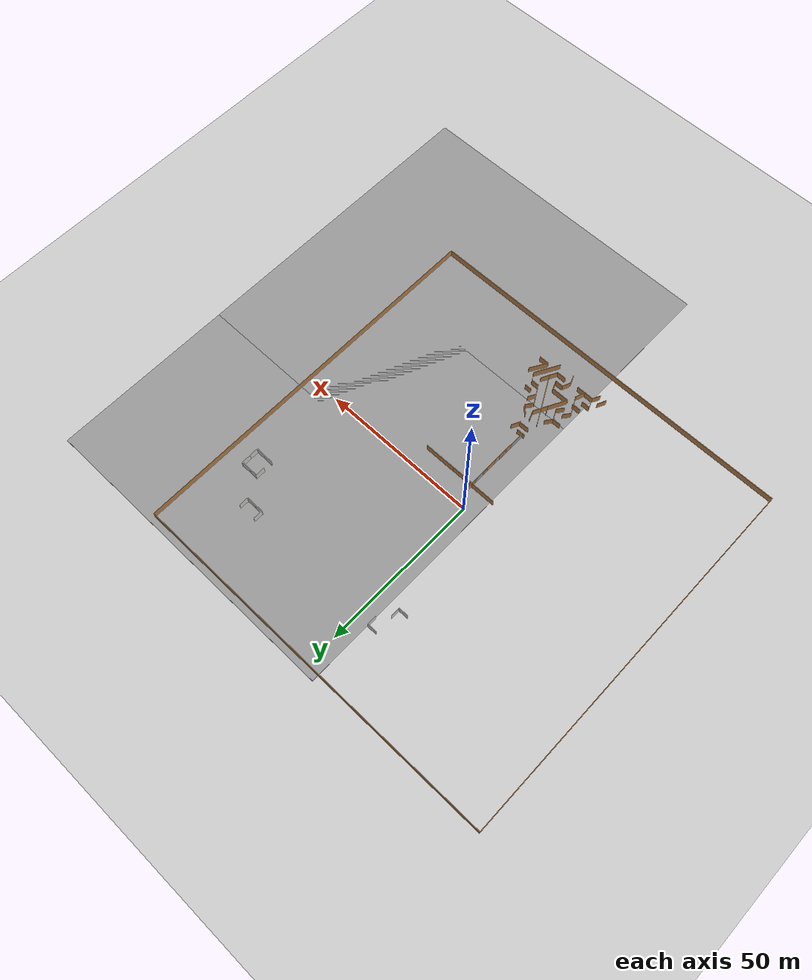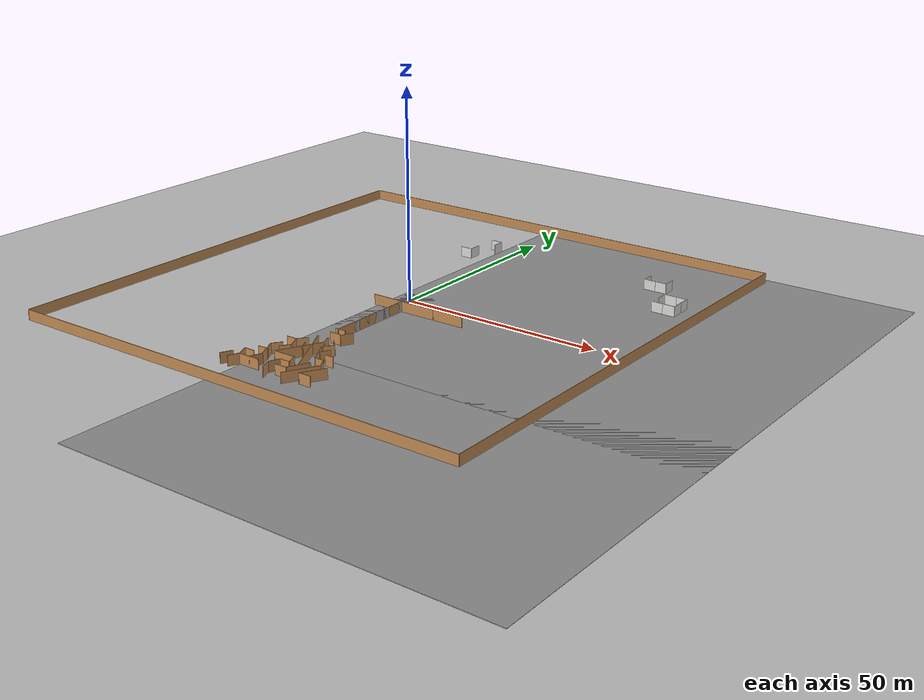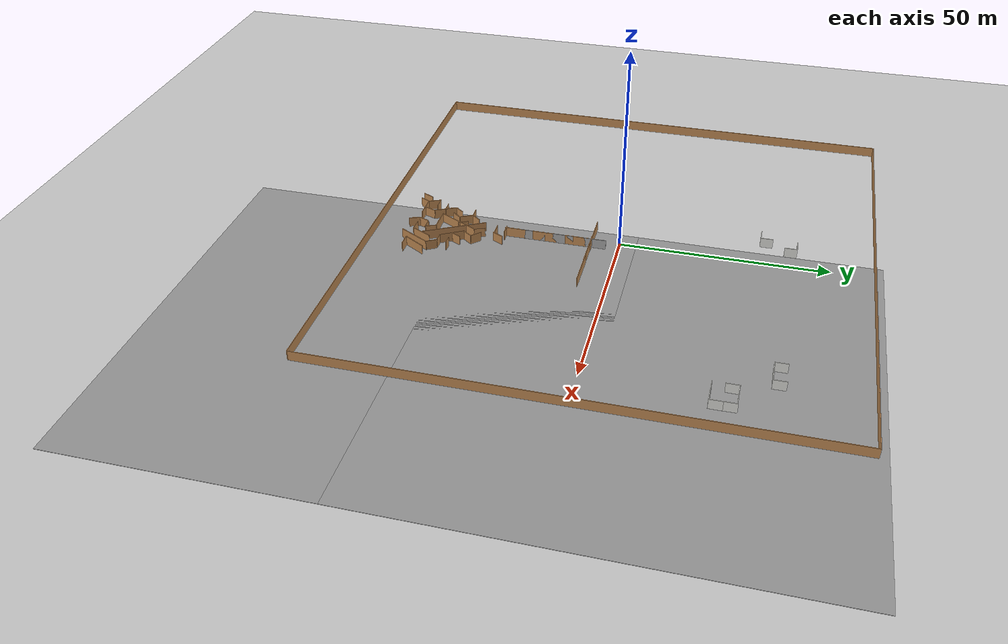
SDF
<sdf version="1.6">
 <world name="default">
  <model name="ground_plane">
   <static>1</static>
   <link name="link">
    <collision name="collision">
     <geometry><plane><normal>0 0 1</normal><size>100 100</size></plane></geometry>
     <surface><friction><ode><mu>100</mu><mu2>50</mu2></ode></friction></surface>
    </collision>
    <visual name="visual">
     <cast_shadows>0</cast_shadows>
     <geometry><plane><normal>0 0 1</normal><size>100 100</size></plane></geometry>
     <material>
      <script><uri>file://media/materials/scripts/gazebo.material</uri><name>Gazebo/Grey</name></script>
     </material>
    </visual>
   </link>
  </model>
  <model name="ground_plane_2">
   <static>1</static>
   <link name="link">
    <collision name="collision">
     <geometry><plane><normal>0 0 1</normal><size>100 100</size></plane></geometry>
     <surface><friction><ode><mu>100</mu><mu2>50</mu2></ode></friction></surface>
    </collision>
    <visual name="visual">
     <cast_shadows>0</cast_shadows>
     <geometry><plane><normal>0 0 1</normal><size>100 100</size></plane></geometry>
     <material>
      <script><uri>file://media/materials/scripts/gazebo.material</uri><name>Gazebo/Grey</name></script>
     </material>
    </visual>
   </link>
   <pose>46 12 0 0 -0 0</pose>
  </model>
  <model name="ground_plane_3">
   <static>1</static>
   <link name="link">
    <collision name="collision">
     <geometry><plane><normal>0 0 1</normal><size>100 100</size></plane></geometry>
     <surface><friction><ode><mu>100</mu><mu2>50</mu2></ode></friction></surface>
    </collision>
    <visual name="visual">
     <cast_shadows>0</cast_shadows>
     <geometry><plane><normal>0 0 1</normal><size>100 100</size></plane></geometry>
     <material>
      <script><uri>file://media/materials/scripts/gazebo.material</uri><name>Gazebo/Grey</name></script>
     </material>
    </visual>
   </link>
   <pose>46 -46 0 0 -0 0</pose>
  </model>
  <model name="map_final_frame_1">
   <link name="Wall_0">
    <collision name="Wall_0_Collision">
     <geometry><box><size>120.15 0.15 2.5</size></box></geometry>
     <pose>0 0 1.25 0 -0 0</pose>
    </collision>
    <visual name="Wall_0_Visual">
     <pose>0 0 1.25 0 -0 0</pose>
     <geometry><box><size>120.15 0.15 2.5</size></box></geometry>
     <material>
      <script><uri>file://media/materials/scripts/gazebo.material</uri><name>Gazebo/Wood</name></script>
      <ambient>1 1 1 1</ambient>
     </material>
    </visual>
    <pose>0 60 0 0 -0 0</pose>
   </link>
   <link name="Wall_1">
    <collision name="Wall_1_Collision">
     <geometry><box><size>120.15 0.15 2.5</size></box></geometry>
     <pose>0 0 1.25 0 -0 0</pose>
    </collision>
    <visual name="Wall_1_Visual">
     <pose>0 0 1.25 0 -0 0</pose>
     <geometry><box><size>120.15 0.15 2.5</size></box></geometry>
     <material>
      <script><uri>file://media/materials/scripts/gazebo.material</uri><name>Gazebo/Wood</name></script>
      <ambient>1 1 1 1</ambient>
     </material>
    </visual>
    <pose>60 0 0 0 0 -1.5708</pose>
   </link>
   <link name="Wall_2">
    <collision name="Wall_2_Collision">
     <geometry><box><size>120.15 0.15 2.5</size></box></geometry>
     <pose>0 0 1.25 0 -0 0</pose>
    </collision>
    <visual name="Wall_2_Visual">
     <pose>0 0 1.25 0 -0 0</pose>
     <geometry><box><size>120.15 0.15 2.5</size></box></geometry>
     <material>
      <script><uri>file://media/materials/scripts/gazebo.material</uri><name>Gazebo/Wood</name></script>
      <ambient>1 1 1 1</ambient>
     </material>
    </visual>
    <pose>0 -60 0 0 -0 3.14159</pose>
   </link>
   <link name="Wall_3">
    <collision name="Wall_3_Collision">
     <geometry><box><size>120.15 0.15 2.5</size></box></geometry>
     <pose>0 0 1.25 0 -0 0</pose>
    </collision>
    <visual name="Wall_3_Visual">
     <pose>0 0 1.25 0 -0 0</pose>
     <geometry><box><size>120.15 0.15 2.5</size></box></geometry>
     <material>
      <script><uri>file://media/materials/scripts/gazebo.material</uri><name>Gazebo/Wood</name></script>
      <ambient>1 1 1 1</ambient>
     </material>
    </visual>
    <pose>-60 0 0 0 -0 1.5708</pose>
   </link>
   <static>1</static>
  </model>
  <model name="wall-10m-ofoghi">
   <pose>15 -6.54766 0 0 -0 0</pose>
   <link name="Wall_22">
    <collision name="Wall_22_Collision">
     <geometry><box><size>10 0.15 2.5</size></box></geometry>
     <pose>0 0 1.25 0 -0 0</pose>
    </collision>
    <visual name="Wall_22_Visual">
     <pose>0 0 1.25 0 -0 0</pose>
     <geometry><box><size>10 0.15 2.5</size></box></geometry>
     <material>
      <script><uri>file://media/materials/scripts/gazebo.material</uri><name>Gazebo/Wood</name></script>
      <ambient>1 1 1 1</ambient>
     </material>
    </visual>
   </link>
   <static>1</static>
  </model>
  <model name="wall-10m-ofoghi_0">
   <pose>7 -6.59851 0 0 -0 0</pose>
   <link name="Wall_22">
    <collision name="Wall_22_Collision">
     <geometry><box><size>10 0.15 2.5</size></box></geometry>
     <pose>0 0 1.25 0 -0 0</pose>
    </collision>
    <visual name="Wall_22_Visual">
     <pose>0 0 1.25 0 -0 0</pose>
     <geometry><box><size>10 0.15 2.5</size></box></geometry>
     <material>
      <script><uri>file://media/materials/scripts/gazebo.material</uri><name>Gazebo/Wood</name></script>
      <ambient>1 1 1 1</ambient>
     </material>
    </visual>
   </link>
   <static>1</static>
  </model>
  <model name="wall-10m-ofoghi_1">
   <pose>0 -6.50132 0 0 -0 0</pose>
   <link name="Wall_22">
    <collision name="Wall_22_Collision">
     <geometry><box><size>10 0.15 2.5</size></box></geometry>
     <pose>0 0 1.25 0 -0 0</pose>
    </collision>
    <visual name="Wall_22_Visual">
     <pose>0 0 1.25 0 -0 0</pose>
     <geometry><box><size>10 0.15 2.5</size></box></geometry>
     <material>
      <script><uri>file://media/materials/scripts/gazebo.material</uri><name>Gazebo/Wood</name></script>
      <ambient>1 1 1 1</ambient>
     </material>
    </visual>
   </link>
   <static>1</static>
  </model>
  <model name="tr_maze_4">
   <pose>4 -40 0 0 -0 0</pose>
   <link name="Wall_0">
    <collision name="Wall_0_Collision">
     <geometry><box><size>2.92308 0.15 2.5</size></box></geometry>
     <pose>0 0 1.25 0 -0 0</pose>
    </collision>
    <visual name="Wall_0_Visual">
     <pose>0 0 1.25 0 -0 0</pose>
     <geometry><box><size>2.92308 0.15 2.5</size></box></geometry>
     <material>
      <script><uri>file://media/materials/scripts/gazebo.material</uri><name>Gazebo/Wood</name></script>
      <ambient>1 1 1 1</ambient>
     </material>
    </visual>
    <pose>-11.0014 -10.9997 0 0 -0 1.12328</pose>
   </link>
   <link name="Wall_10">
    <collision name="Wall_10_Collision">
     <geometry><box><size>3.12321 0.15 2.5</size></box></geometry>
     <pose>0 0 1.25 0 -0 0</pose>
    </collision>
    <visual name="Wall_10_Visual">
     <pose>0 0 1.25 0 -0 0</pose>
     <geometry><box><size>3.12321 0.15 2.5</size></box></geometry>
     <material>
      <script><uri>file://media/materials/scripts/gazebo.material</uri><name>Gazebo/Wood</name></script>
      <ambient>1 1 1 1</ambient>
     </material>
    </visual>
    <pose>-4.90142 -8.64967 0 0 -0 1.22777</pose>
   </link>
   <link name="Wall_12">
    <collision name="Wall_12_Collision">
     <geometry><box><size>5.74017 0.15 2.5</size></box></geometry>
     <pose>0 0 1.25 0 -0 0</pose>
    </collision>
    <visual name="Wall_12_Visual">
     <pose>0 0 1.25 0 -0 0</pose>
     <geometry><box><size>5.74017 0.15 2.5</size></box></geometry>
     <material>
      <script><uri>file://media/materials/scripts/gazebo.material</uri><name>Gazebo/Wood</name></script>
      <ambient>0.996078 0.47451 0.0196078 1</ambient>
     </material>
    </visual>
    <pose>-5.65142 -4.74967 0 0 -0 2.03444</pose>
   </link>
   <link name="Wall_14">
    <collision name="Wall_14_Collision">
     <geometry><box><size>2.75 0.15 2.5</size></box></geometry>
     <pose>0 0 1.25 0 -0 0</pose>
    </collision>
    <visual name="Wall_14_Visual">
     <pose>0 0 1.25 0 -0 0</pose>
     <geometry><box><size>2.75 0.15 2.5</size></box></geometry>
     <material>
      <script><uri>file://media/materials/scripts/gazebo.material</uri><name>Gazebo/Wood</name></script>
      <ambient>0.996078 0.47451 0.0196078 1</ambient>
     </material>
    </visual>
    <pose>-6.70142 -4.74967 0 0 -0 3.14159</pose>
   </link>
   <link name="Wall_16">
    <collision name="Wall_16_Collision">
     <geometry><box><size>2.65 0.15 2.5</size></box></geometry>
     <pose>0 0 1.25 0 -0 0</pose>
    </collision>
    <visual name="Wall_16_Visual">
     <pose>0 0 1.25 0 -0 0</pose>
     <geometry><box><size>2.65 0.15 2.5</size></box></geometry>
     <material>
      <script><uri>file://media/materials/scripts/gazebo.material</uri><name>Gazebo/Wood</name></script>
      <ambient>0.996078 0.47451 0.0196078 1</ambient>
     </material>
    </visual>
    <pose>-6.15142 -1.24967 0 0 -0 0.927295</pose>
   </link>
   <link name="Wall_18">
    <collision name="Wall_18_Collision">
     <geometry><box><size>2.65 0.15 2.5</size></box></geometry>
     <pose>0 0 1.25 0 -0 0</pose>
    </collision>
    <visual name="Wall_18_Visual">
     <pose>0 0 1.25 0 -0 0</pose>
     <geometry><box><size>2.65 0.15 2.5</size></box></geometry>
     <material>
      <script><uri>file://media/materials/scripts/gazebo.material</uri><name>Gazebo/Wood</name></script>
      <ambient>0.996078 0.47451 0.0196078 1</ambient>
     </material>
    </visual>
    <pose>-3.65142 -1.24967 0 0 -0 0.927295</pose>
   </link>
   <link name="Wall_2">
    <collision name="Wall_2_Collision">
     <geometry><box><size>2.65599 0.15 2.5</size></box></geometry>
     <pose>0 0 1.25 0 -0 0</pose>
    </collision>
    <visual name="Wall_2_Visual">
     <pose>0 0 1.25 0 -0 0</pose>
     <geometry><box><size>2.65599 0.15 2.5</size></box></geometry>
     <material>
      <script><uri>file://media/materials/scripts/gazebo.material</uri><name>Gazebo/Wood</name></script>
      <ambient>1 1 1 1</ambient>
     </material>
    </visual>
    <pose>-8.80142 -11.1497 0 0 -0 1.07145</pose>
   </link>
   <link name="Wall_20">
    <collision name="Wall_20_Collision">
     <geometry><box><size>3.5041 0.15 2.5</size></box></geometry>
     <pose>0 0 1.25 0 -0 0</pose>
    </collision>
    <visual name="Wall_20_Visual">
     <pose>0 0 1.25 0 -0 0</pose>
     <geometry><box><size>3.5041 0.15 2.5</size></box></geometry>
     <material>
      <script><uri>file://media/materials/scripts/gazebo.material</uri><name>Gazebo/Wood</name></script>
      <ambient>0.996078 0.47451 0.0196078 1</ambient>
     </material>
    </visual>
    <pose>-3.65142 1.25033 0 0 -0 2.03444</pose>
   </link>
   <link name="Wall_22">
    <collision name="Wall_22_Collision">
     <geometry><box><size>2.65 0.15 2.5</size></box></geometry>
     <pose>0 0 1.25 0 -0 0</pose>
    </collision>
    <visual name="Wall_22_Visual">
     <pose>0 0 1.25 0 -0 0</pose>
     <geometry><box><size>2.65 0.15 2.5</size></box></geometry>
     <material>
      <script><uri>file://media/materials/scripts/gazebo.material</uri><name>Gazebo/Wood</name></script>
      <ambient>0.996078 0.47451 0.0196078 1</ambient>
     </material>
    </visual>
    <pose>-3.65142 3.75034 0 0 -0 0.927295</pose>
   </link>
   <link name="Wall_24">
    <collision name="Wall_24_Collision">
     <geometry><box><size>2.65 0.15 2.5</size></box></geometry>
     <pose>0 0 1.25 0 -0 0</pose>
    </collision>
    <visual name="Wall_24_Visual">
     <pose>0 0 1.25 0 -0 0</pose>
     <geometry><box><size>2.65 0.15 2.5</size></box></geometry>
     <material>
      <script><uri>file://media/materials/scripts/gazebo.material</uri><name>Gazebo/Wood</name></script>
      <ambient>0.996078 0.47451 0.0196078 1</ambient>
     </material>
    </visual>
    <pose>-5.65142 2.75034 0 0 -0 3.14159</pose>
   </link>
   <link name="Wall_26">
    <collision name="Wall_26_Collision">
     <geometry><box><size>2.84258 0.15 2.5</size></box></geometry>
     <pose>0 0 1.25 0 -0 0</pose>
    </collision>
    <visual name="Wall_26_Visual">
     <pose>0 0 1.25 0 -0 0</pose>
     <geometry><box><size>2.84258 0.15 2.5</size></box></geometry>
     <material>
      <script><uri>file://media/materials/scripts/gazebo.material</uri><name>Gazebo/Wood</name></script>
      <ambient>1 1 1 1</ambient>
     </material>
    </visual>
    <pose>0.098585 -10.9997 0 0 -0 1.9513</pose>
   </link>
   <link name="Wall_28">
    <collision name="Wall_28_Collision">
     <geometry><box><size>2.84258 0.15 2.5</size></box></geometry>
     <pose>0 0 1.25 0 -0 0</pose>
    </collision>
    <visual name="Wall_28_Visual">
     <pose>0 0 1.25 0 -0 0</pose>
     <geometry><box><size>2.84258 0.15 2.5</size></box></geometry>
     <material>
      <script><uri>file://media/materials/scripts/gazebo.material</uri><name>Gazebo/Wood</name></script>
      <ambient>1 1 1 1</ambient>
     </material>
    </visual>
    <pose>0.098585 -8.49967 0 0 -0 1.19029</pose>
   </link>
   <link name="Wall_30">
    <collision name="Wall_30_Collision">
     <geometry><box><size>2.65 0.15 2.5</size></box></geometry>
     <pose>0 0 1.25 0 -0 0</pose>
    </collision>
    <visual name="Wall_30_Visual">
     <pose>0 0 1.25 0 -0 0</pose>
     <geometry><box><size>2.65 0.15 2.5</size></box></geometry>
     <material>
      <script><uri>file://media/materials/scripts/gazebo.material</uri><name>Gazebo/Wood</name></script>
      <ambient>1 1 1 1</ambient>
     </material>
    </visual>
    <pose>1.84858 -7.24967 0 0 -0 0</pose>
   </link>
   <link name="Wall_32">
    <collision name="Wall_32_Collision">
     <geometry><box><size>2.84258 0.15 2.5</size></box></geometry>
     <pose>0 0 1.25 0 -0 0</pose>
    </collision>
    <visual name="Wall_32_Visual">
     <pose>0 0 1.25 0 -0 0</pose>
     <geometry><box><size>2.84258 0.15 2.5</size></box></geometry>
     <material>
      <script><uri>file://media/materials/scripts/gazebo.material</uri><name>Gazebo/Wood</name></script>
      <ambient>1 1 1 1</ambient>
     </material>
    </visual>
    <pose>2.59858 -5.99967 0 0 -0 1.9513</pose>
   </link>
   <link name="Wall_34">
    <collision name="Wall_34_Collision">
     <geometry><box><size>5.65 0.15 2.5</size></box></geometry>
     <pose>0 0 1.25 0 -0 0</pose>
    </collision>
    <visual name="Wall_34_Visual">
     <pose>0 0 1.25 0 -0 0</pose>
     <geometry><box><size>5.65 0.15 2.5</size></box></geometry>
     <material>
      <script><uri>file://media/materials/scripts/gazebo.material</uri><name>Gazebo/Wood</name></script>
      <ambient>1 1 1 1</ambient>
     </material>
    </visual>
    <pose>-0.651415 -4.74967 0 0 -0 3.14159</pose>
   </link>
   <link name="Wall_36">
    <collision name="Wall_36_Collision">
     <geometry><box><size>10.8855 0.15 2.5</size></box></geometry>
     <pose>0 0 1.25 0 -0 0</pose>
    </collision>
    <visual name="Wall_36_Visual">
     <pose>0 0 1.25 0 -0 0</pose>
     <geometry><box><size>10.8855 0.15 2.5</size></box></geometry>
     <material>
      <script><uri>file://media/materials/scripts/gazebo.material</uri><name>Gazebo/Wood</name></script>
      <ambient>0.996078 0.47451 0.0196078 1</ambient>
     </material>
    </visual>
    <pose>-0.901415 0.000335 0 0 -0 1.08632</pose>
   </link>
   <link name="Wall_38">
    <collision name="Wall_38_Collision">
     <geometry><box><size>2.38607 0.15 2.5</size></box></geometry>
     <pose>0 0 1.25 0 -0 0</pose>
    </collision>
    <visual name="Wall_38_Visual">
     <pose>0 0 1.25 0 -0 0</pose>
     <geometry><box><size>2.38607 0.15 2.5</size></box></geometry>
     <material>
      <script><uri>file://media/materials/scripts/gazebo.material</uri><name>Gazebo/Wood</name></script>
      <ambient>0.996078 0.47451 0.0196078 1</ambient>
     </material>
    </visual>
    <pose>-0.901415 1.25033 0 0 -0 2.03444</pose>
   </link>
   <link name="Wall_4">
    <collision name="Wall_4_Collision">
     <geometry><box><size>5.45 0.15 2.5</size></box></geometry>
     <pose>0 0 1.25 0 -0 0</pose>
    </collision>
    <visual name="Wall_4_Visual">
     <pose>0 0 1.25 0 -0 0</pose>
     <geometry><box><size>5.45 0.15 2.5</size></box></geometry>
     <material>
      <script><uri>file://media/materials/scripts/gazebo.material</uri><name>Gazebo/Wood</name></script>
      <ambient>1 1 1 1</ambient>
     </material>
    </visual>
    <pose>-5.55142 -10.0497 0 0 -0 0</pose>
   </link>
   <link name="Wall_40">
    <collision name="Wall_40_Collision">
     <geometry><box><size>2.84258 0.15 2.5</size></box></geometry>
     <pose>0 0 1.25 0 -0 0</pose>
    </collision>
    <visual name="Wall_40_Visual">
     <pose>0 0 1.25 0 -0 0</pose>
     <geometry><box><size>2.84258 0.15 2.5</size></box></geometry>
     <material>
      <script><uri>file://media/materials/scripts/gazebo.material</uri><name>Gazebo/Wood</name></script>
      <ambient>0.996078 0.47451 0.0196078 1</ambient>
     </material>
    </visual>
    <pose>1.09858 6.00033 0 0 -0 1.9513</pose>
   </link>
   <link name="Wall_42">
    <collision name="Wall_42_Collision">
     <geometry><box><size>16.0324 0.15 2.5</size></box></geometry>
     <pose>0 0 1.25 0 -0 0</pose>
    </collision>
    <visual name="Wall_42_Visual">
     <pose>0 0 1.25 0 -0 0</pose>
     <geometry><box><size>16.0324 0.15 2.5</size></box></geometry>
     <material>
      <script><uri>file://media/materials/scripts/gazebo.material</uri><name>Gazebo/Wood</name></script>
      <ambient>0.996078 0.47451 0.0196078 1</ambient>
     </material>
    </visual>
    <pose>1.84858 -0.249665 0 0 -0 2.06261</pose>
   </link>
   <link name="Wall_44">
    <collision name="Wall_44_Collision">
     <geometry><box><size>5.29296 0.15 2.5</size></box></geometry>
     <pose>0 0 1.25 0 -0 0</pose>
    </collision>
    <visual name="Wall_44_Visual">
     <pose>0 0 1.25 0 -0 0</pose>
     <geometry><box><size>5.29296 0.15 2.5</size></box></geometry>
     <material>
      <script><uri>file://media/materials/scripts/gazebo.material</uri><name>Gazebo/Wood</name></script>
      <ambient>1 1 1 1</ambient>
     </material>
    </visual>
    <pose>5.74858 -7.34966 0 0 -0 1.10715</pose>
   </link>
   <link name="Wall_46">
    <collision name="Wall_46_Collision">
     <geometry><box><size>3.15 0.15 2.5</size></box></geometry>
     <pose>0 0 1.25 0 -0 0</pose>
    </collision>
    <visual name="Wall_46_Visual">
     <pose>0 0 1.25 0 -0 0</pose>
     <geometry><box><size>3.15 0.15 2.5</size></box></geometry>
     <material>
      <script><uri>file://media/materials/scripts/gazebo.material</uri><name>Gazebo/Wood</name></script>
      <ambient>1 1 1 1</ambient>
     </material>
    </visual>
    <pose>3.09858 -9.74967 0 0 -0 3.14159</pose>
   </link>
   <link name="Wall_48">
    <collision name="Wall_48_Collision">
     <geometry><box><size>8.47406 0.15 2.5</size></box></geometry>
     <pose>0 0 1.25 0 -0 0</pose>
    </collision>
    <visual name="Wall_48_Visual">
     <pose>0 0 1.25 0 -0 0</pose>
     <geometry><box><size>8.47406 0.15 2.5</size></box></geometry>
     <material>
      <script><uri>file://media/materials/scripts/gazebo.material</uri><name>Gazebo/Wood</name></script>
      <ambient>1 1 1 1</ambient>
     </material>
    </visual>
    <pose>7.59858 -8.59966 0 0 -0 1.06953</pose>
   </link>
   <link name="Wall_50">
    <collision name="Wall_50_Collision">
     <geometry><box><size>2.84258 0.15 2.5</size></box></geometry>
     <pose>0 0 1.25 0 -0 0</pose>
    </collision>
    <visual name="Wall_50_Visual">
     <pose>0 0 1.25 0 -0 0</pose>
     <geometry><box><size>2.84258 0.15 2.5</size></box></geometry>
     <material>
      <script><uri>file://media/materials/scripts/gazebo.material</uri><name>Gazebo/Wood</name></script>
      <ambient>1 1 1 1</ambient>
     </material>
    </visual>
    <pose>8.89858 -3.79967 0 0 -0 2.11759</pose>
   </link>
   <link name="Wall_52">
    <collision name="Wall_52_Collision">
     <geometry><box><size>2.25 0.15 2.5</size></box></geometry>
     <pose>0 0 1.25 0 -0 0</pose>
    </collision>
    <visual name="Wall_52_Visual">
     <pose>0 0 1.25 0 -0 0</pose>
     <geometry><box><size>2.25 0.15 2.5</size></box></geometry>
     <material>
      <script><uri>file://media/materials/scripts/gazebo.material</uri><name>Gazebo/Wood</name></script>
      <ambient>1 1 1 1</ambient>
     </material>
    </visual>
    <pose>7.14858 -2.64966 0 0 -0 3.14159</pose>
   </link>
   <link name="Wall_54">
    <collision name="Wall_54_Collision">
     <geometry><box><size>6.25 0.15 2.5</size></box></geometry>
     <pose>0 0 1.25 0 -0 0</pose>
    </collision>
    <visual name="Wall_54_Visual">
     <pose>0 0 1.25 0 -0 0</pose>
     <geometry><box><size>6.25 0.15 2.5</size></box></geometry>
     <material>
      <script><uri>file://media/materials/scripts/gazebo.material</uri><name>Gazebo/Wood</name></script>
      <ambient>1 1 1 1</ambient>
     </material>
    </visual>
    <pose>4.42709 -0.065034 0 0 -0 2.0944</pose>
   </link>
   <link name="Wall_56">
    <collision name="Wall_56_Collision">
     <geometry><box><size>2.65 0.15 2.5</size></box></geometry>
     <pose>0 0 1.25 0 -0 0</pose>
    </collision>
    <visual name="Wall_56_Visual">
     <pose>0 0 1.25 0 -0 0</pose>
     <geometry><box><size>2.65 0.15 2.5</size></box></geometry>
     <material>
      <script><uri>file://media/materials/scripts/gazebo.material</uri><name>Gazebo/Wood</name></script>
      <ambient>1 1 1 1</ambient>
     </material>
    </visual>
    <pose>3.84858 3.75034 0 0 -0 0.927295</pose>
   </link>
   <link name="Wall_58">
    <collision name="Wall_58_Collision">
     <geometry><box><size>2.97843 0.15 2.5</size></box></geometry>
     <pose>0 0 1.25 0 -0 0</pose>
    </collision>
    <visual name="Wall_58_Visual">
     <pose>0 0 1.25 0 -0 0</pose>
     <geometry><box><size>2.97843 0.15 2.5</size></box></geometry>
     <material>
      <script><uri>file://media/materials/scripts/gazebo.material</uri><name>Gazebo/Wood</name></script>
      <ambient>1 1 1 1</ambient>
     </material>
    </visual>
    <pose>3.59858 5.75033 0 0 -0 2.35619</pose>
   </link>
   <link name="Wall_6">
    <collision name="Wall_6_Collision">
     <geometry><box><size>3.19631 0.15 2.5</size></box></geometry>
     <pose>0 0 1.25 0 -0 0</pose>
    </collision>
    <visual name="Wall_6_Visual">
     <pose>0 0 1.25 0 -0 0</pose>
     <geometry><box><size>3.19631 0.15 2.5</size></box></geometry>
     <material>
      <script><uri>file://media/materials/scripts/gazebo.material</uri><name>Gazebo/Wood</name></script>
      <ambient>1 1 1 1</ambient>
     </material>
    </visual>
    <pose>-8.80142 -8.64967 0 0 -0 1.97569</pose>
   </link>
   <link name="Wall_60">
    <collision name="Wall_60_Collision">
     <geometry><box><size>3.15 0.15 2.5</size></box></geometry>
     <pose>0 0 1.25 0 -0 0</pose>
    </collision>
    <visual name="Wall_60_Visual">
     <pose>0 0 1.25 0 -0 0</pose>
     <geometry><box><size>3.15 0.15 2.5</size></box></geometry>
     <material>
      <script><uri>file://media/materials/scripts/gazebo.material</uri><name>Gazebo/Wood</name></script>
      <ambient>1 1 1 1</ambient>
     </material>
    </visual>
    <pose>10.0986 -10.2497 0 0 -0 3.14159</pose>
   </link>
   <link name="Wall_62">
    <collision name="Wall_62_Collision">
     <geometry><box><size>5.98095 0.15 2.5</size></box></geometry>
     <pose>0 0 1.25 0 -0 0</pose>
    </collision>
    <visual name="Wall_62_Visual">
     <pose>0 0 1.25 0 -0 0</pose>
     <geometry><box><size>5.98095 0.15 2.5</size></box></geometry>
     <material>
      <script><uri>file://media/materials/scripts/gazebo.material</uri><name>Gazebo/Wood</name></script>
      <ambient>1 1 1 1</ambient>
     </material>
    </visual>
    <pose>10.0986 -7.74967 0 0 -0 1.03038</pose>
   </link>
   <link name="Wall_64">
    <collision name="Wall_64_Collision">
     <geometry><box><size>2.15 0.15 2.5</size></box></geometry>
     <pose>0 0 1.25 0 -0 0</pose>
    </collision>
    <visual name="Wall_64_Visual">
     <pose>0 0 1.25 0 -0 0</pose>
     <geometry><box><size>2.15 0.15 2.5</size></box></geometry>
     <material>
      <script><uri>file://media/materials/scripts/gazebo.material</uri><name>Gazebo/Wood</name></script>
      <ambient>1 1 1 1</ambient>
     </material>
    </visual>
    <pose>7.59858 -0.249665 0 0 -0 3.14159</pose>
   </link>
   <link name="Wall_66">
    <collision name="Wall_66_Collision">
     <geometry><box><size>2.9678 0.15 2.5</size></box></geometry>
     <pose>0 0 1.25 0 -0 0</pose>
    </collision>
    <visual name="Wall_66_Visual">
     <pose>0 0 1.25 0 -0 0</pose>
     <geometry><box><size>2.9678 0.15 2.5</size></box></geometry>
     <material>
      <script><uri>file://media/materials/scripts/gazebo.material</uri><name>Gazebo/Wood</name></script>
      <ambient>0.996078 0.47451 0.0196078 1</ambient>
     </material>
    </visual>
    <pose>2.44859 11.0003 0 0 0 -2.05032</pose>
   </link>
   <link name="Wall_68">
    <collision name="Wall_68_Collision">
     <geometry><box><size>3.15 0.15 2.5</size></box></geometry>
     <pose>0 0 1.25 0 -0 0</pose>
    </collision>
    <visual name="Wall_68_Visual">
     <pose>0 0 1.25 0 -0 0</pose>
     <geometry><box><size>3.15 0.15 2.5</size></box></geometry>
     <material>
      <script><uri>file://media/materials/scripts/gazebo.material</uri><name>Gazebo/Wood</name></script>
      <ambient>0.996078 0.47451 0.0196078 1</ambient>
     </material>
    </visual>
    <pose>0.298584 9.95034 0 0 -0 3.14159</pose>
   </link>
   <link name="Wall_70">
    <collision name="Wall_70_Collision">
     <geometry><box><size>2.65 0.15 2.5</size></box></geometry>
     <pose>0 0 1.25 0 -0 0</pose>
    </collision>
    <visual name="Wall_70_Visual">
     <pose>0 0 1.25 0 -0 0</pose>
     <geometry><box><size>2.65 0.15 2.5</size></box></geometry>
     <material>
      <script><uri>file://media/materials/scripts/gazebo.material</uri><name>Gazebo/Wood</name></script>
      <ambient>1 1 1 1</ambient>
     </material>
    </visual>
    <pose>-0.451416 12.2503 0 0 -0 3.14159</pose>
   </link>
   <link name="Wall_72">
    <collision name="Wall_72_Collision">
     <geometry><box><size>2.38607 0.15 2.5</size></box></geometry>
     <pose>0 0 1.25 0 -0 0</pose>
    </collision>
    <visual name="Wall_72_Visual">
     <pose>0 0 1.25 0 -0 0</pose>
     <geometry><box><size>2.38607 0.15 2.5</size></box></geometry>
     <material>
      <script><uri>file://media/materials/scripts/gazebo.material</uri><name>Gazebo/Wood</name></script>
      <ambient>1 1 1 1</ambient>
     </material>
    </visual>
    <pose>5.09858 1.25033 0 0 -0 1.10715</pose>
   </link>
   <link name="Wall_8">
    <collision name="Wall_8_Collision">
     <geometry><box><size>2.65 0.15 2.5</size></box></geometry>
     <pose>0 0 1.25 0 -0 0</pose>
    </collision>
    <visual name="Wall_8_Visual">
     <pose>0 0 1.25 0 -0 0</pose>
     <geometry><box><size>2.65 0.15 2.5</size></box></geometry>
     <material>
      <script><uri>file://media/materials/scripts/gazebo.material</uri><name>Gazebo/Wood</name></script>
      <ambient>1 1 1 1</ambient>
     </material>
    </visual>
    <pose>-8.15142 -7.24967 0 0 -0 0</pose>
   </link>
   <static>1</static>
  </model>
  <model name="wall-10m-amodi">
   <pose>3 -8 0 0 -0 0</pose>
   <link name="Wall_24">
    <collision name="Wall_24_Collision">
     <geometry><box><size>10 0.15 2.5</size></box></geometry>
     <pose>0 0 1.25 0 -0 0</pose>
    </collision>
    <visual name="Wall_24_Visual">
     <pose>0 0 1.25 0 -0 0</pose>
     <geometry><box><size>10 0.15 2.5</size></box></geometry>
     <material>
      <script><uri>file://media/materials/scripts/gazebo.material</uri><name>Gazebo/Grey</name></script>
      <ambient>1 1 1 1</ambient>
     </material>
    </visual>
    <pose>0 -0 0 0 0 -1.5708</pose>
   </link>
   <link name="Wall_25">
    <collision name="Wall_25_Collision">
     <geometry><box><size>10 0.15 2.5</size></box></geometry>
     <pose>0 0 1.25 0 -0 0</pose>
    </collision>
    <visual name="Wall_25_Visual">
     <pose>0 0 1.25 0 -0 0</pose>
     <geometry><box><size>10 0.15 2.5</size></box></geometry>
     <material>
      <script><uri>file://media/materials/scripts/gazebo.material</uri><name>Gazebo/Wood</name></script>
      <ambient>1 1 1 1</ambient>
     </material>
    </visual>
    <pose>0 -0 0 0 -0 1.5708</pose>
   </link>
   <static>1</static>
  </model>
  <model name="wall-10m-amodi_0">
   <pose>3 -16 0 0 -0 0</pose>
   <link name="Wall_24">
    <collision name="Wall_24_Collision">
     <geometry><box><size>10 0.15 2.5</size></box></geometry>
     <pose>0 0 1.25 0 -0 0</pose>
    </collision>
    <visual name="Wall_24_Visual">
     <pose>0 0 1.25 0 -0 0</pose>
     <geometry><box><size>10 0.15 2.5</size></box></geometry>
     <material>
      <script><uri>file://media/materials/scripts/gazebo.material</uri><name>Gazebo/Grey</name></script>
      <ambient>1 1 1 1</ambient>
     </material>
    </visual>
    <pose>0 -0 0 0 0 -1.5708</pose>
   </link>
   <link name="Wall_25">
    <collision name="Wall_25_Collision">
     <geometry><box><size>10 0.15 2.5</size></box></geometry>
     <pose>0 0 1.25 0 -0 0</pose>
    </collision>
    <visual name="Wall_25_Visual">
     <pose>0 0 1.25 0 -0 0</pose>
     <geometry><box><size>10 0.15 2.5</size></box></geometry>
     <material>
      <script><uri>file://media/materials/scripts/gazebo.material</uri><name>Gazebo/Wood</name></script>
      <ambient>1 1 1 1</ambient>
     </material>
    </visual>
    <pose>0 -0 0 0 -0 1.5708</pose>
   </link>
   <static>1</static>
  </model>
  <model name="wall-10m-amodi_1">
   <pose>3 -23 0 0 -0 0</pose>
   <link name="Wall_24">
    <collision name="Wall_24_Collision">
     <geometry><box><size>10 0.15 2.5</size></box></geometry>
     <pose>0 0 1.25 0 -0 0</pose>
    </collision>
    <visual name="Wall_24_Visual">
     <pose>0 0 1.25 0 -0 0</pose>
     <geometry><box><size>10 0.15 2.5</size></box></geometry>
     <material>
      <script><uri>file://media/materials/scripts/gazebo.material</uri><name>Gazebo/Grey</name></script>
      <ambient>1 1 1 1</ambient>
     </material>
    </visual>
    <pose>0 -0 0 0 0 -1.5708</pose>
   </link>
   <link name="Wall_25">
    <collision name="Wall_25_Collision">
     <geometry><box><size>10 0.15 2.5</size></box></geometry>
     <pose>0 0 1.25 0 -0 0</pose>
    </collision>
    <visual name="Wall_25_Visual">
     <pose>0 0 1.25 0 -0 0</pose>
     <geometry><box><size>10 0.15 2.5</size></box></geometry>
     <material>
      <script><uri>file://media/materials/scripts/gazebo.material</uri><name>Gazebo/Wood</name></script>
      <ambient>1 1 1 1</ambient>
     </material>
    </visual>
    <pose>0 -0 0 0 -0 1.5708</pose>
   </link>
   <static>1</static>
  </model>
  <model name="concrete_wall_clone_2">
   <pose>-7.15817 34.5512 0 0 -0 0</pose>
   <link name="Wall_0">
    <collision name="Wall_0_Collision">
     <geometry><box><size>3 0.15 2.5</size></box></geometry>
     <pose>0 0 1.25 0 -0 0</pose>
    </collision>
    <visual name="Wall_0_Visual">
     <pose>0 0 1.25 0 -0 0</pose>
     <geometry><box><size>3 0.15 2.5</size></box></geometry>
     <material>
      <script><uri>file://media/materials/scripts/gazebo.material</uri><name>Gazebo/CeilingTiled</name></script>
      <ambient>1 1 1 1</ambient>
     </material>
     <meta><layer>0</layer></meta>
    </visual>
    <pose>0 0 0 0 -0 1.5708</pose>
   </link>
   <static>1</static>
  </model>
  <model name="concrete_wall_clone_4">
   <pose>-4.17708 40.4274 0 0 -0 0</pose>
   <link name="Wall_0">
    <collision name="Wall_0_Collision">
     <geometry><box><size>3 0.15 2.5</size></box></geometry>
     <pose>0 0 1.25 0 -0 0</pose>
    </collision>
    <visual name="Wall_0_Visual">
     <pose>0 0 1.25 0 -0 0</pose>
     <geometry><box><size>3 0.15 2.5</size></box></geometry>
     <material>
      <script><uri>file://media/materials/scripts/gazebo.material</uri><name>Gazebo/CeilingTiled</name></script>
      <ambient>1 1 1 1</ambient>
     </material>
     <meta><layer>0</layer></meta>
    </visual>
    <pose>0 0 0 0 -0 1.5708</pose>
   </link>
   <static>1</static>
  </model>
  <model name="concrete_wall_clone_5">
   <pose>44.8534 40.6079 0 0 -0 0</pose>
   <link name="Wall_0">
    <collision name="Wall_0_Collision">
     <geometry><box><size>3 0.15 2.5</size></box></geometry>
     <pose>0 0 1.25 0 -0 0</pose>
    </collision>
    <visual name="Wall_0_Visual">
     <pose>0 0 1.25 0 -0 0</pose>
     <geometry><box><size>3 0.15 2.5</size></box></geometry>
     <material>
      <script><uri>file://media/materials/scripts/gazebo.material</uri><name>Gazebo/CeilingTiled</name></script>
      <ambient>1 1 1 1</ambient>
     </material>
     <meta><layer>0</layer></meta>
    </visual>
    <pose>0 0 0 0 -0 1.5708</pose>
   </link>
   <static>1</static>
  </model>
  <model name="concrete_wall_clone_8">
   <pose>39.1713 40.6026 0 0 -0 0</pose>
   <link name="Wall_0">
    <collision name="Wall_0_Collision">
     <geometry><box><size>3 0.15 2.5</size></box></geometry>
     <pose>0 0 1.25 0 -0 0</pose>
    </collision>
    <visual name="Wall_0_Visual">
     <pose>0 0 1.25 0 -0 0</pose>
     <geometry><box><size>3 0.15 2.5</size></box></geometry>
     <material>
      <script><uri>file://media/materials/scripts/gazebo.material</uri><name>Gazebo/CeilingTiled</name></script>
      <ambient>1 1 1 1</ambient>
     </material>
     <meta><layer>0</layer></meta>
    </visual>
    <pose>0 0 0 0 -0 1.5708</pose>
   </link>
   <static>1</static>
  </model>
  <model name="concrete_wall_clone_9">
   <pose>53.8487 28.5934 0 0 -0 0</pose>
   <link name="Wall_0">
    <collision name="Wall_0_Collision">
     <geometry><box><size>3 0.15 2.5</size></box></geometry>
     <pose>0 0 1.25 0 -0 0</pose>
    </collision>
    <visual name="Wall_0_Visual">
     <pose>0 0 1.25 0 -0 0</pose>
     <geometry><box><size>3 0.15 2.5</size></box></geometry>
     <material>
      <script><uri>file://media/materials/scripts/gazebo.material</uri><name>Gazebo/CeilingTiled</name></script>
      <ambient>1 1 1 1</ambient>
     </material>
     <meta><layer>0</layer></meta>
    </visual>
    <pose>0 0 0 0 -0 1.5708</pose>
   </link>
   <static>1</static>
  </model>
  <model name="concrete_wall_clone_10">
   <pose>53.8133 31.4997 0 0 -0 0</pose>
   <link name="Wall_0">
    <collision name="Wall_0_Collision">
     <geometry><box><size>3 0.15 2.5</size></box></geometry>
     <pose>0 0 1.25 0 -0 0</pose>
    </collision>
    <visual name="Wall_0_Visual">
     <pose>0 0 1.25 0 -0 0</pose>
     <geometry><box><size>3 0.15 2.5</size></box></geometry>
     <material>
      <script><uri>file://media/materials/scripts/gazebo.material</uri><name>Gazebo/CeilingTiled</name></script>
      <ambient>1 1 1 1</ambient>
     </material>
     <meta><layer>0</layer></meta>
    </visual>
    <pose>0 0 0 0 -0 1.5708</pose>
   </link>
   <static>1</static>
  </model>
  <model name="concrete_wall_clone_11">
   <pose>48.166 31.4626 0 0 -0 0</pose>
   <link name="Wall_0">
    <collision name="Wall_0_Collision">
     <geometry><box><size>3 0.15 2.5</size></box></geometry>
     <pose>0 0 1.25 0 -0 0</pose>
    </collision>
    <visual name="Wall_0_Visual">
     <pose>0 0 1.25 0 -0 0</pose>
     <geometry><box><size>3 0.15 2.5</size></box></geometry>
     <material>
      <script><uri>file://media/materials/scripts/gazebo.material</uri><name>Gazebo/CeilingTiled</name></script>
      <ambient>1 1 1 1</ambient>
     </material>
     <meta><layer>0</layer></meta>
    </visual>
    <pose>0 0 0 0 -0 1.5708</pose>
   </link>
   <static>1</static>
  </model>
  <model name="concrete_wall_0_clone">
   <pose>-8.6934 33.1258 0 0 -0 1.57079</pose>
   <link name="Wall_0">
    <collision name="Wall_0_Collision">
     <geometry><box><size>3 0.15 2.5</size></box></geometry>
     <pose>0 0 1.25 0 -0 0</pose>
    </collision>
    <visual name="Wall_0_Visual">
     <pose>0 0 1.25 0 -0 0</pose>
     <geometry><box><size>3 0.15 2.5</size></box></geometry>
     <material>
      <script><uri>file://media/materials/scripts/gazebo.material</uri><name>Gazebo/CeilingTiled</name></script>
      <ambient>1 1 1 1</ambient>
     </material>
     <meta><layer>0</layer></meta>
    </visual>
    <pose>0 0 0 0 -0 1.5708</pose>
   </link>
   <static>1</static>
  </model>
  <model name="concrete_wall_0_clone_3">
   <pose>-5.71807 41.8571 0 0 -0 1.57079</pose>
   <link name="Wall_0">
    <collision name="Wall_0_Collision">
     <geometry><box><size>3 0.15 2.5</size></box></geometry>
     <pose>0 0 1.25 0 -0 0</pose>
    </collision>
    <visual name="Wall_0_Visual">
     <pose>0 0 1.25 0 -0 0</pose>
     <geometry><box><size>3 0.15 2.5</size></box></geometry>
     <material>
      <script><uri>file://media/materials/scripts/gazebo.material</uri><name>Gazebo/CeilingTiled</name></script>
      <ambient>1 1 1 1</ambient>
     </material>
     <meta><layer>0</layer></meta>
    </visual>
    <pose>0 0 0 0 -0 1.5708</pose>
   </link>
   <static>1</static>
  </model>
  <model name="concrete_wall_0_clone_4">
   <pose>43.2873 39.1788 0 0 -0 1.57079</pose>
   <link name="Wall_0">
    <collision name="Wall_0_Collision">
     <geometry><box><size>3 0.15 2.5</size></box></geometry>
     <pose>0 0 1.25 0 -0 0</pose>
    </collision>
    <visual name="Wall_0_Visual">
     <pose>0 0 1.25 0 -0 0</pose>
     <geometry><box><size>3 0.15 2.5</size></box></geometry>
     <material>
      <script><uri>file://media/materials/scripts/gazebo.material</uri><name>Gazebo/CeilingTiled</name></script>
      <ambient>1 1 1 1</ambient>
     </material>
     <meta><layer>0</layer></meta>
    </visual>
    <pose>0 0 0 0 -0 1.5708</pose>
   </link>
   <static>1</static>
  </model>
  <model name="concrete_wall_0_clone_5">
   <pose>40.5241 39.1637 0 0 -0 1.57079</pose>
   <link name="Wall_0">
    <collision name="Wall_0_Collision">
     <geometry><box><size>3 0.15 2.5</size></box></geometry>
     <pose>0 0 1.25 0 -0 0</pose>
    </collision>
    <visual name="Wall_0_Visual">
     <pose>0 0 1.25 0 -0 0</pose>
     <geometry><box><size>3 0.15 2.5</size></box></geometry>
     <material>
      <script><uri>file://media/materials/scripts/gazebo.material</uri><name>Gazebo/CeilingTiled</name></script>
      <ambient>1 1 1 1</ambient>
     </material>
     <meta><layer>0</layer></meta>
    </visual>
    <pose>0 0 0 0 -0 1.5708</pose>
   </link>
   <static>1</static>
  </model>
  <model name="concrete_wall_0_clone_7">
   <pose>52.2455 32.8418 0 0 -0 1.57079</pose>
   <link name="Wall_0">
    <collision name="Wall_0_Collision">
     <geometry><box><size>3 0.15 2.5</size></box></geometry>
     <pose>0 0 1.25 0 -0 0</pose>
    </collision>
    <visual name="Wall_0_Visual">
     <pose>0 0 1.25 0 -0 0</pose>
     <geometry><box><size>3 0.15 2.5</size></box></geometry>
     <material>
      <script><uri>file://media/materials/scripts/gazebo.material</uri><name>Gazebo/CeilingTiled</name></script>
      <ambient>1 1 1 1</ambient>
     </material>
     <meta><layer>0</layer></meta>
    </visual>
    <pose>0 0 0 0 -0 1.5708</pose>
   </link>
   <static>1</static>
  </model>
  <model name="concrete_wall_0_clone_8">
   <pose>52.3587 27.128 0 0 -0 1.57079</pose>
   <link name="Wall_0">
    <collision name="Wall_0_Collision">
     <geometry><box><size>3 0.15 2.5</size></box></geometry>
     <pose>0 0 1.25 0 -0 0</pose>
    </collision>
    <visual name="Wall_0_Visual">
     <pose>0 0 1.25 0 -0 0</pose>
     <geometry><box><size>3 0.15 2.5</size></box></geometry>
     <material>
      <script><uri>file://media/materials/scripts/gazebo.material</uri><name>Gazebo/CeilingTiled</name></script>
      <ambient>1 1 1 1</ambient>
     </material>
     <meta><layer>0</layer></meta>
    </visual>
    <pose>0 0 0 0 -0 1.5708</pose>
   </link>
   <static>1</static>
  </model>
  <model name="concrete_wall_0_clone_9">
   <pose>49.5152 27.1828 0 0 -0 1.57079</pose>
   <link name="Wall_0">
    <collision name="Wall_0_Collision">
     <geometry><box><size>3 0.15 2.5</size></box></geometry>
     <pose>0 0 1.25 0 -0 0</pose>
    </collision>
    <visual name="Wall_0_Visual">
     <pose>0 0 1.25 0 -0 0</pose>
     <geometry><box><size>3 0.15 2.5</size></box></geometry>
     <material>
      <script><uri>file://media/materials/scripts/gazebo.material</uri><name>Gazebo/CeilingTiled</name></script>
      <ambient>1 1 1 1</ambient>
     </material>
     <meta><layer>0</layer></meta>
    </visual>
    <pose>0 0 0 0 -0 1.5708</pose>
   </link>
   <static>1</static>
  </model>
  <model name="concrete_wall_0_clone_10">
   <pose>49.6648 32.8391 0 0 -0 1.57079</pose>
   <link name="Wall_0">
    <collision name="Wall_0_Collision">
     <geometry><box><size>3 0.15 2.5</size></box></geometry>
     <pose>0 0 1.25 0 -0 0</pose>
    </collision>
    <visual name="Wall_0_Visual">
     <pose>0 0 1.25 0 -0 0</pose>
     <geometry><box><size>3 0.15 2.5</size></box></geometry>
     <material>
      <script><uri>file://media/materials/scripts/gazebo.material</uri><name>Gazebo/CeilingTiled</name></script>
      <ambient>1 1 1 1</ambient>
     </material>
     <meta><layer>0</layer></meta>
    </visual>
    <pose>0 0 0 0 -0 1.5708</pose>
   </link>
   <static>1</static>
  </model>
 </world>
</sdf>
